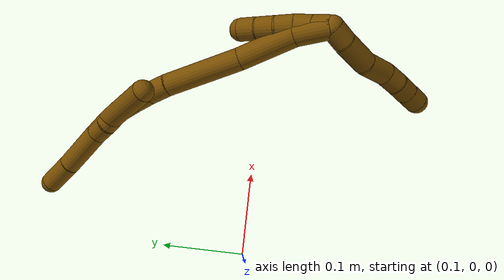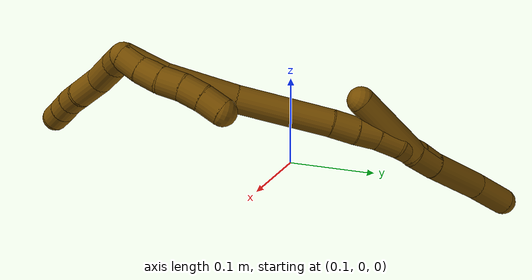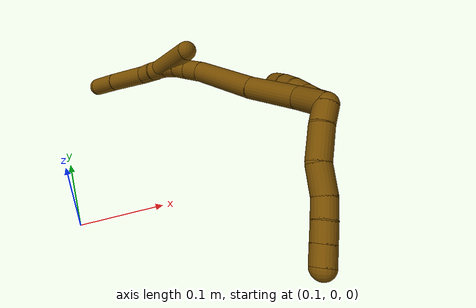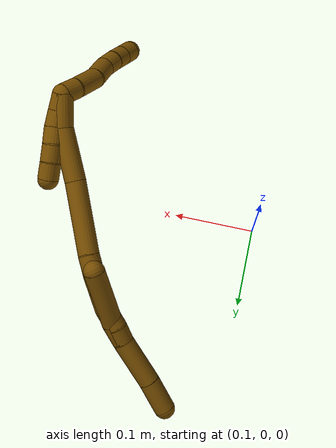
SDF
<sdf version="1.7">
 <world name="default">
  <model name="12">
   <static>0</static>
   <link name="12">
    <collision name="collision-cylinder-e_1_2_8">
     <pose>0.005767 -0.008968 9.7e-05 1.55998 0.571506 0.565684</pose>
     <geometry><cylinder><radius>0.0125</radius><length>0.021325</length></cylinder></geometry>
     <surface>
      <friction><ode><mu>1.16</mu><mu2>1.16</mu2><slip1>0</slip1><slip2>0</slip2></ode></friction>
      <contact><ode><kp>1e+06</kp><kd>1</kd><max_vel>0</max_vel><min_depth>0.001</min_depth></ode></contact>
     </surface>
    </collision>
    <visual name="visual-cylinder-e_1_2_8">
     <pose>0.005767 -0.008968 9.7e-05 1.55998 0.571506 0.565684</pose>
     <geometry><cylinder><radius>0.0125</radius><length>0.021325</length></cylinder></geometry>
     <material><ambient>0.466667 0.301961 0 1</ambient></material>
    </visual>
    <collision name="collision-cylinder-e_2_8_9">
     <pose>0.023657 -0.031764 0.001216 1.49703 0.718386 0.671135</pose>
     <geometry><cylinder><radius>0.0125</radius><length>0.036835</length></cylinder></geometry>
     <surface>
      <friction><ode><mu>1.16</mu><mu2>1.16</mu2><slip1>0</slip1><slip2>0</slip2></ode></friction>
      <contact><ode><kp>1e+06</kp><kd>1</kd><max_vel>0</max_vel><min_depth>0.001</min_depth></ode></contact>
     </surface>
    </collision>
    <visual name="visual-cylinder-e_2_8_9">
     <pose>0.023657 -0.031764 0.001216 1.49703 0.718386 0.671135</pose>
     <geometry><cylinder><radius>0.0125</radius><length>0.036835</length></cylinder></geometry>
     <material><ambient>0.466667 0.301961 0 1</ambient></material>
    </visual>
    <collision name="collision-cylinder-e_3_9_10">
     <pose>0.047618 -0.054922 0.00616 1.17282 0.863491 0.594086</pose>
     <geometry><cylinder><radius>0.0125</radius><length>0.031151</length></cylinder></geometry>
     <surface>
      <friction><ode><mu>1.16</mu><mu2>1.16</mu2><slip1>0</slip1><slip2>0</slip2></ode></friction>
      <contact><ode><kp>1e+06</kp><kd>1</kd><max_vel>0</max_vel><min_depth>0.001</min_depth></ode></contact>
     </surface>
    </collision>
    <visual name="visual-cylinder-e_3_9_10">
     <pose>0.047618 -0.054922 0.00616 1.17282 0.863491 0.594086</pose>
     <geometry><cylinder><radius>0.0125</radius><length>0.031151</length></cylinder></geometry>
     <material><ambient>0.466667 0.301961 0 1</ambient></material>
    </visual>
    <collision name="collision-cylinder-e_4_10_11">
     <pose>0.066131 -0.072013 0.011551 1.38378 0.701573 0.588726</pose>
     <geometry><cylinder><radius>0.0125</radius><length>0.020682</length></cylinder></geometry>
     <surface>
      <friction><ode><mu>1.16</mu><mu2>1.16</mu2><slip1>0</slip1><slip2>0</slip2></ode></friction>
      <contact><ode><kp>1e+06</kp><kd>1</kd><max_vel>0</max_vel><min_depth>0.001</min_depth></ode></contact>
     </surface>
    </collision>
    <visual name="visual-cylinder-e_4_10_11">
     <pose>0.066131 -0.072013 0.011551 1.38378 0.701573 0.588726</pose>
     <geometry><cylinder><radius>0.0125</radius><length>0.020682</length></cylinder></geometry>
     <material><ambient>0.466667 0.301961 0 1</ambient></material>
    </visual>
    <collision name="collision-cylinder-e_5_11_12">
     <pose>0.079919 -0.086761 0.013788 1.46124 0.79131 0.716239</pose>
     <geometry><cylinder><radius>0.0125</radius><length>0.020002</length></cylinder></geometry>
     <surface>
      <friction><ode><mu>1.16</mu><mu2>1.16</mu2><slip1>0</slip1><slip2>0</slip2></ode></friction>
      <contact><ode><kp>1e+06</kp><kd>1</kd><max_vel>0</max_vel><min_depth>0.001</min_depth></ode></contact>
     </surface>
    </collision>
    <visual name="visual-cylinder-e_5_11_12">
     <pose>0.079919 -0.086761 0.013788 1.46124 0.79131 0.716239</pose>
     <geometry><cylinder><radius>0.0125</radius><length>0.020002</length></cylinder></geometry>
     <material><ambient>0.466667 0.301961 0 1</ambient></material>
    </visual>
    <collision name="collision-cylinder-e_6_12_6">
     <pose>0.094032 -0.100846 0.015393 1.45349 0.775042 0.696213</pose>
     <geometry><cylinder><radius>0.0125</radius><length>0.020004</length></cylinder></geometry>
     <surface>
      <friction><ode><mu>1.16</mu><mu2>1.16</mu2><slip1>0</slip1><slip2>0</slip2></ode></friction>
      <contact><ode><kp>1e+06</kp><kd>1</kd><max_vel>0</max_vel><min_depth>0.001</min_depth></ode></contact>
     </surface>
    </collision>
    <visual name="visual-cylinder-e_6_12_6">
     <pose>0.094032 -0.100846 0.015393 1.45349 0.775042 0.696213</pose>
     <geometry><cylinder><radius>0.0125</radius><length>0.020004</length></cylinder></geometry>
     <material><ambient>0.466667 0.301961 0 1</ambient></material>
    </visual>
    <collision name="collision-cylinder-e_1_2_13">
     <pose>0.001466 0.006149 -0.007749 -2.47085 0.147107 -0.416695</pose>
     <geometry><cylinder><radius>0.0125</radius><length>0.02</length></cylinder></geometry>
     <surface>
      <friction><ode><mu>1.16</mu><mu2>1.16</mu2><slip1>0</slip1><slip2>0</slip2></ode></friction>
      <contact><ode><kp>1e+06</kp><kd>1</kd><max_vel>0</max_vel><min_depth>0.001</min_depth></ode></contact>
     </surface>
    </collision>
    <visual name="visual-cylinder-e_1_2_13">
     <pose>0.001466 0.006149 -0.007749 -2.47085 0.147107 -0.416695</pose>
     <geometry><cylinder><radius>0.0125</radius><length>0.02</length></cylinder></geometry>
     <material><ambient>0.466667 0.301961 0 1</ambient></material>
    </visual>
    <collision name="collision-cylinder-e_2_13_14">
     <pose>0.002936 0.018525 -0.023322 -2.46926 0.000486 -0.00139</pose>
     <geometry><cylinder><radius>0.0125</radius><length>0.02</length></cylinder></geometry>
     <surface>
      <friction><ode><mu>1.16</mu><mu2>1.16</mu2><slip1>0</slip1><slip2>0</slip2></ode></friction>
      <contact><ode><kp>1e+06</kp><kd>1</kd><max_vel>0</max_vel><min_depth>0.001</min_depth></ode></contact>
     </surface>
    </collision>
    <visual name="visual-cylinder-e_2_13_14">
     <pose>0.002936 0.018525 -0.023322 -2.46926 0.000486 -0.00139</pose>
     <geometry><cylinder><radius>0.0125</radius><length>0.02</length></cylinder></geometry>
     <material><ambient>0.466667 0.301961 0 1</ambient></material>
    </visual>
    <collision name="collision-cylinder-e_3_14_15">
     <pose>0.001586 0.029974 -0.039566 -2.58657 -0.135902 0.469023</pose>
     <geometry><cylinder><radius>0.0125</radius><length>0.02</length></cylinder></geometry>
     <surface>
      <friction><ode><mu>1.16</mu><mu2>1.16</mu2><slip1>0</slip1><slip2>0</slip2></ode></friction>
      <contact><ode><kp>1e+06</kp><kd>1</kd><max_vel>0</max_vel><min_depth>0.001</min_depth></ode></contact>
     </surface>
    </collision>
    <visual name="visual-cylinder-e_3_14_15">
     <pose>0.001586 0.029974 -0.039566 -2.58657 -0.135902 0.469023</pose>
     <geometry><cylinder><radius>0.0125</radius><length>0.02</length></cylinder></geometry>
     <material><ambient>0.466667 0.301961 0 1</ambient></material>
    </visual>
    <collision name="collision-cylinder-e_4_15_16">
     <pose>0.000449 0.040632 -0.056377 -2.5667 0.021788 -0.073669</pose>
     <geometry><cylinder><radius>0.0125</radius><length>0.02</length></cylinder></geometry>
     <surface>
      <friction><ode><mu>1.16</mu><mu2>1.16</mu2><slip1>0</slip1><slip2>0</slip2></ode></friction>
      <contact><ode><kp>1e+06</kp><kd>1</kd><max_vel>0</max_vel><min_depth>0.001</min_depth></ode></contact>
     </surface>
    </collision>
    <visual name="visual-cylinder-e_4_15_16">
     <pose>0.000449 0.040632 -0.056377 -2.5667 0.021788 -0.073669</pose>
     <geometry><cylinder><radius>0.0125</radius><length>0.02</length></cylinder></geometry>
     <material><ambient>0.466667 0.301961 0 1</ambient></material>
    </visual>
    <collision name="collision-cylinder-e_5_16_5">
     <pose>0.0021 0.051508 -0.073035 -2.55955 0.143794 -0.471942</pose>
     <geometry><cylinder><radius>0.0125</radius><length>0.02</length></cylinder></geometry>
     <surface>
      <friction><ode><mu>1.16</mu><mu2>1.16</mu2><slip1>0</slip1><slip2>0</slip2></ode></friction>
      <contact><ode><kp>1e+06</kp><kd>1</kd><max_vel>0</max_vel><min_depth>0.001</min_depth></ode></contact>
     </surface>
    </collision>
    <visual name="visual-cylinder-e_5_16_5">
     <pose>0.0021 0.051508 -0.073035 -2.55955 0.143794 -0.471942</pose>
     <geometry><cylinder><radius>0.0125</radius><length>0.02</length></cylinder></geometry>
     <material><ambient>0.466667 0.301961 0 1</ambient></material>
    </visual>
    <collision name="collision-cylinder-e_1_2_17">
     <pose>0.000491 0.008259 -0.017767 -2.70647 0.025071 -0.113299</pose>
     <geometry><cylinder><radius>0.0125</radius><length>0.039198</length></cylinder></geometry>
     <surface>
      <friction><ode><mu>1.16</mu><mu2>1.16</mu2><slip1>0</slip1><slip2>0</slip2></ode></friction>
      <contact><ode><kp>1e+06</kp><kd>1</kd><max_vel>0</max_vel><min_depth>0.001</min_depth></ode></contact>
     </surface>
    </collision>
    <visual name="visual-cylinder-e_1_2_17">
     <pose>0.000491 0.008259 -0.017767 -2.70647 0.025071 -0.113299</pose>
     <geometry><cylinder><radius>0.0125</radius><length>0.039198</length></cylinder></geometry>
     <material><ambient>0.466667 0.301961 0 1</ambient></material>
    </visual>
    <collision name="collision-cylinder-e_2_17_18">
     <pose>-0.002413 0.023231 -0.06625 -2.92642 -0.107577 0.924905</pose>
     <geometry><cylinder><radius>0.0125</radius><length>0.063247</length></cylinder></geometry>
     <surface>
      <friction><ode><mu>1.16</mu><mu2>1.16</mu2><slip1>0</slip1><slip2>0</slip2></ode></friction>
      <contact><ode><kp>1e+06</kp><kd>1</kd><max_vel>0</max_vel><min_depth>0.001</min_depth></ode></contact>
     </surface>
    </collision>
    <visual name="visual-cylinder-e_2_17_18">
     <pose>-0.002413 0.023231 -0.06625 -2.92642 -0.107577 0.924905</pose>
     <geometry><cylinder><radius>0.0125</radius><length>0.063247</length></cylinder></geometry>
     <material><ambient>0.466667 0.301961 0 1</ambient></material>
    </visual>
    <collision name="collision-cylinder-e_3_18_19">
     <pose>-0.013011 0.041315 -0.137753 -2.86971 -0.168504 1.10625</pose>
     <geometry><cylinder><radius>0.0125</radius><length>0.0859</length></cylinder></geometry>
     <surface>
      <friction><ode><mu>1.16</mu><mu2>1.16</mu2><slip1>0</slip1><slip2>0</slip2></ode></friction>
      <contact><ode><kp>1e+06</kp><kd>1</kd><max_vel>0</max_vel><min_depth>0.001</min_depth></ode></contact>
     </surface>
    </collision>
    <visual name="visual-cylinder-e_3_18_19">
     <pose>-0.013011 0.041315 -0.137753 -2.86971 -0.168504 1.10625</pose>
     <geometry><cylinder><radius>0.0125</radius><length>0.0859</length></cylinder></geometry>
     <material><ambient>0.466667 0.301961 0 1</ambient></material>
    </visual>
    <collision name="collision-cylinder-e_4_19_20">
     <pose>-0.021394 0.05493 -0.190101 -2.94982 -0.099788 0.957724</pose>
     <geometry><cylinder><radius>0.0125</radius><length>0.023672</length></cylinder></geometry>
     <surface>
      <friction><ode><mu>1.16</mu><mu2>1.16</mu2><slip1>0</slip1><slip2>0</slip2></ode></friction>
      <contact><ode><kp>1e+06</kp><kd>1</kd><max_vel>0</max_vel><min_depth>0.001</min_depth></ode></contact>
     </surface>
    </collision>
    <visual name="visual-cylinder-e_4_19_20">
     <pose>-0.021394 0.05493 -0.190101 -2.94982 -0.099788 0.957724</pose>
     <geometry><cylinder><radius>0.0125</radius><length>0.023672</length></cylinder></geometry>
     <material><ambient>0.466667 0.301961 0 1</ambient></material>
    </visual>
    <collision name="collision-cylinder-e_5_20_21">
     <pose>-0.024078 0.058378 -0.211539 -3.02041 -0.15015 1.78419</pose>
     <geometry><cylinder><radius>0.0125</radius><length>0.020127</length></cylinder></geometry>
     <surface>
      <friction><ode><mu>1.16</mu><mu2>1.16</mu2><slip1>0</slip1><slip2>0</slip2></ode></friction>
      <contact><ode><kp>1e+06</kp><kd>1</kd><max_vel>0</max_vel><min_depth>0.001</min_depth></ode></contact>
     </surface>
    </collision>
    <visual name="visual-cylinder-e_5_20_21">
     <pose>-0.024078 0.058378 -0.211539 -3.02041 -0.15015 1.78419</pose>
     <geometry><cylinder><radius>0.0125</radius><length>0.020127</length></cylinder></geometry>
     <material><ambient>0.466667 0.301961 0 1</ambient></material>
    </visual>
    <collision name="collision-cylinder-e_6_21_22">
     <pose>-0.02572 0.060827 -0.232581 -3.03039 -0.012166 0.217716</pose>
     <geometry><cylinder><radius>0.0125</radius><length>0.022471</length></cylinder></geometry>
     <surface>
      <friction><ode><mu>1.16</mu><mu2>1.16</mu2><slip1>0</slip1><slip2>0</slip2></ode></friction>
      <contact><ode><kp>1e+06</kp><kd>1</kd><max_vel>0</max_vel><min_depth>0.001</min_depth></ode></contact>
     </surface>
    </collision>
    <visual name="visual-cylinder-e_6_21_22">
     <pose>-0.02572 0.060827 -0.232581 -3.03039 -0.012166 0.217716</pose>
     <geometry><cylinder><radius>0.0125</radius><length>0.022471</length></cylinder></geometry>
     <material><ambient>0.466667 0.301961 0 1</ambient></material>
    </visual>
    <collision name="collision-cylinder-e_7_22_23">
     <pose>-0.02481 0.060853 -0.25607 3.04285 0.084359 1.41379</pose>
     <geometry><cylinder><radius>0.0125</radius><length>0.024856</length></cylinder></geometry>
     <surface>
      <friction><ode><mu>1.16</mu><mu2>1.16</mu2><slip1>0</slip1><slip2>0</slip2></ode></friction>
      <contact><ode><kp>1e+06</kp><kd>1</kd><max_vel>0</max_vel><min_depth>0.001</min_depth></ode></contact>
     </surface>
    </collision>
    <visual name="visual-cylinder-e_7_22_23">
     <pose>-0.02481 0.060853 -0.25607 3.04285 0.084359 1.41379</pose>
     <geometry><cylinder><radius>0.0125</radius><length>0.024856</length></cylinder></geometry>
     <material><ambient>0.466667 0.301961 0 1</ambient></material>
    </visual>
    <collision name="collision-cylinder-e_8_23_1">
     <pose>-0.021617 0.059678 -0.278431 -3.137 0.210556 -3.09813</pose>
     <geometry><cylinder><radius>0.0125</radius><length>0.020528</length></cylinder></geometry>
     <surface>
      <friction><ode><mu>1.16</mu><mu2>1.16</mu2><slip1>0</slip1><slip2>0</slip2></ode></friction>
      <contact><ode><kp>1e+06</kp><kd>1</kd><max_vel>0</max_vel><min_depth>0.001</min_depth></ode></contact>
     </surface>
    </collision>
    <visual name="visual-cylinder-e_8_23_1">
     <pose>-0.021617 0.059678 -0.278431 -3.137 0.210556 -3.09813</pose>
     <geometry><cylinder><radius>0.0125</radius><length>0.020528</length></cylinder></geometry>
     <material><ambient>0.466667 0.301961 0 1</ambient></material>
    </visual>
    <collision name="collision-cylinder-e_1_1_24">
     <pose>-0.01705 0.055931 -0.317517 3.01175 0.08249 1.1312</pose>
     <geometry><cylinder><radius>0.0125</radius><length>0.058791</length></cylinder></geometry>
     <surface>
      <friction><ode><mu>1.16</mu><mu2>1.16</mu2><slip1>0</slip1><slip2>0</slip2></ode></friction>
      <contact><ode><kp>1e+06</kp><kd>1</kd><max_vel>0</max_vel><min_depth>0.001</min_depth></ode></contact>
     </surface>
    </collision>
    <visual name="visual-cylinder-e_1_1_24">
     <pose>-0.01705 0.055931 -0.317517 3.01175 0.08249 1.1312</pose>
     <geometry><cylinder><radius>0.0125</radius><length>0.058791</length></cylinder></geometry>
     <material><ambient>0.466667 0.301961 0 1</ambient></material>
    </visual>
    <collision name="collision-cylinder-e_2_24_4">
     <pose>-0.012069 0.050732 -0.366963 3.07274 0.124498 2.13202</pose>
     <geometry><cylinder><radius>0.0125</radius><length>0.041209</length></cylinder></geometry>
     <surface>
      <friction><ode><mu>1.16</mu><mu2>1.16</mu2><slip1>0</slip1><slip2>0</slip2></ode></friction>
      <contact><ode><kp>1e+06</kp><kd>1</kd><max_vel>0</max_vel><min_depth>0.001</min_depth></ode></contact>
     </surface>
    </collision>
    <visual name="visual-cylinder-e_2_24_4">
     <pose>-0.012069 0.050732 -0.366963 3.07274 0.124498 2.13202</pose>
     <geometry><cylinder><radius>0.0125</radius><length>0.041209</length></cylinder></geometry>
     <material><ambient>0.466667 0.301961 0 1</ambient></material>
    </visual>
    <collision name="collision-cylinder-e_1_1_25">
     <pose>-0.021257 0.060802 -0.275503 -0.082939 -0.136364 0.005667</pose>
     <geometry><cylinder><radius>0.0125</radius><length>0.026263</length></cylinder></geometry>
     <surface>
      <friction><ode><mu>1.16</mu><mu2>1.16</mu2><slip1>0</slip1><slip2>0</slip2></ode></friction>
      <contact><ode><kp>1e+06</kp><kd>1</kd><max_vel>0</max_vel><min_depth>0.001</min_depth></ode></contact>
     </surface>
    </collision>
    <visual name="visual-cylinder-e_1_1_25">
     <pose>-0.021257 0.060802 -0.275503 -0.082939 -0.136364 0.005667</pose>
     <geometry><cylinder><radius>0.0125</radius><length>0.026263</length></cylinder></geometry>
     <material><ambient>0.466667 0.301961 0 1</ambient></material>
    </visual>
    <collision name="collision-cylinder-e_2_25_3">
     <pose>-0.035996 0.058964 -0.228144 0.084573 -0.359018 -0.015356</pose>
     <geometry><cylinder><radius>0.0125</radius><length>0.073737</length></cylinder></geometry>
     <surface>
      <friction><ode><mu>1.16</mu><mu2>1.16</mu2><slip1>0</slip1><slip2>0</slip2></ode></friction>
      <contact><ode><kp>1e+06</kp><kd>1</kd><max_vel>0</max_vel><min_depth>0.001</min_depth></ode></contact>
     </surface>
    </collision>
    <visual name="visual-cylinder-e_2_25_3">
     <pose>-0.035996 0.058964 -0.228144 0.084573 -0.359018 -0.015356</pose>
     <geometry><cylinder><radius>0.0125</radius><length>0.073737</length></cylinder></geometry>
     <material><ambient>0.466667 0.301961 0 1</ambient></material>
    </visual>
    <collision name="collision-sphere-3">
     <pose>-0.04895 0.056048 -0.193749 0 -0 0</pose>
     <geometry><sphere><radius>0.0125</radius></sphere></geometry>
     <surface>
      <friction><ode><mu>1.16</mu><mu2>1.16</mu2><slip1>0</slip1><slip2>0</slip2></ode></friction>
      <contact><ode><kp>1e+06</kp><kd>1</kd><max_vel>0</max_vel><min_depth>0.001</min_depth></ode></contact>
     </surface>
    </collision>
    <visual name="visual-sphere-3">
     <pose>-0.04895 0.056048 -0.193749 0 -0 0</pose>
     <geometry><sphere><radius>0.0125</radius></sphere></geometry>
     <material><ambient>0.466667 0.301961 0 1</ambient></material>
    </visual>
    <collision name="collision-sphere-25">
     <pose>-0.023042 0.06188 -0.262538 0 -0 0</pose>
     <geometry><sphere><radius>0.0125</radius></sphere></geometry>
     <surface>
      <friction><ode><mu>1.16</mu><mu2>1.16</mu2><slip1>0</slip1><slip2>0</slip2></ode></friction>
      <contact><ode><kp>1e+06</kp><kd>1</kd><max_vel>0</max_vel><min_depth>0.001</min_depth></ode></contact>
     </surface>
    </collision>
    <visual name="visual-sphere-25">
     <pose>-0.023042 0.06188 -0.262538 0 -0 0</pose>
     <geometry><sphere><radius>0.0125</radius></sphere></geometry>
     <material><ambient>0.466667 0.301961 0 1</ambient></material>
    </visual>
    <collision name="collision-sphere-4">
     <pose>-0.00951 0.049325 -0.387359 0 -0 0</pose>
     <geometry><sphere><radius>0.0125</radius></sphere></geometry>
     <surface>
      <friction><ode><mu>1.16</mu><mu2>1.16</mu2><slip1>0</slip1><slip2>0</slip2></ode></friction>
      <contact><ode><kp>1e+06</kp><kd>1</kd><max_vel>0</max_vel><min_depth>0.001</min_depth></ode></contact>
     </surface>
    </collision>
    <visual name="visual-sphere-4">
     <pose>-0.00951 0.049325 -0.387359 0 -0 0</pose>
     <geometry><sphere><radius>0.0125</radius></sphere></geometry>
     <material><ambient>0.466667 0.301961 0 1</ambient></material>
    </visual>
    <collision name="collision-sphere-24">
     <pose>-0.014628 0.052138 -0.346566 0 -0 0</pose>
     <geometry><sphere><radius>0.0125</radius></sphere></geometry>
     <surface>
      <friction><ode><mu>1.16</mu><mu2>1.16</mu2><slip1>0</slip1><slip2>0</slip2></ode></friction>
      <contact><ode><kp>1e+06</kp><kd>1</kd><max_vel>0</max_vel><min_depth>0.001</min_depth></ode></contact>
     </surface>
    </collision>
    <visual name="visual-sphere-24">
     <pose>-0.014628 0.052138 -0.346566 0 -0 0</pose>
     <geometry><sphere><radius>0.0125</radius></sphere></geometry>
     <material><ambient>0.466667 0.301961 0 1</ambient></material>
    </visual>
    <collision name="collision-sphere-1">
     <pose>-0.019472 0.059725 -0.288468 0 -0 0</pose>
     <geometry><sphere><radius>0.0125</radius></sphere></geometry>
     <surface>
      <friction><ode><mu>1.16</mu><mu2>1.16</mu2><slip1>0</slip1><slip2>0</slip2></ode></friction>
      <contact><ode><kp>1e+06</kp><kd>1</kd><max_vel>0</max_vel><min_depth>0.001</min_depth></ode></contact>
     </surface>
    </collision>
    <visual name="visual-sphere-1">
     <pose>-0.019472 0.059725 -0.288468 0 -0 0</pose>
     <geometry><sphere><radius>0.0125</radius></sphere></geometry>
     <material><ambient>0.466667 0.301961 0 1</ambient></material>
    </visual>
    <collision name="collision-sphere-23">
     <pose>-0.023762 0.059632 -0.268394 0 -0 0</pose>
     <geometry><sphere><radius>0.0125</radius></sphere></geometry>
     <surface>
      <friction><ode><mu>1.16</mu><mu2>1.16</mu2><slip1>0</slip1><slip2>0</slip2></ode></friction>
      <contact><ode><kp>1e+06</kp><kd>1</kd><max_vel>0</max_vel><min_depth>0.001</min_depth></ode></contact>
     </surface>
    </collision>
    <visual name="visual-sphere-23">
     <pose>-0.023762 0.059632 -0.268394 0 -0 0</pose>
     <geometry><sphere><radius>0.0125</radius></sphere></geometry>
     <material><ambient>0.466667 0.301961 0 1</ambient></material>
    </visual>
    <collision name="collision-sphere-22">
     <pose>-0.025857 0.062074 -0.243747 0 -0 0</pose>
     <geometry><sphere><radius>0.0125</radius></sphere></geometry>
     <surface>
      <friction><ode><mu>1.16</mu><mu2>1.16</mu2><slip1>0</slip1><slip2>0</slip2></ode></friction>
      <contact><ode><kp>1e+06</kp><kd>1</kd><max_vel>0</max_vel><min_depth>0.001</min_depth></ode></contact>
     </surface>
    </collision>
    <visual name="visual-sphere-22">
     <pose>-0.025857 0.062074 -0.243747 0 -0 0</pose>
     <geometry><sphere><radius>0.0125</radius></sphere></geometry>
     <material><ambient>0.466667 0.301961 0 1</ambient></material>
    </visual>
    <collision name="collision-sphere-21">
     <pose>-0.025583 0.059581 -0.221416 0 -0 0</pose>
     <geometry><sphere><radius>0.0125</radius></sphere></geometry>
     <surface>
      <friction><ode><mu>1.16</mu><mu2>1.16</mu2><slip1>0</slip1><slip2>0</slip2></ode></friction>
      <contact><ode><kp>1e+06</kp><kd>1</kd><max_vel>0</max_vel><min_depth>0.001</min_depth></ode></contact>
     </surface>
    </collision>
    <visual name="visual-sphere-21">
     <pose>-0.025583 0.059581 -0.221416 0 -0 0</pose>
     <geometry><sphere><radius>0.0125</radius></sphere></geometry>
     <material><ambient>0.466667 0.301961 0 1</ambient></material>
    </visual>
    <collision name="collision-sphere-12">
     <pose>0.087033 -0.093749 0.014557 0 -0 0</pose>
     <geometry><sphere><radius>0.0125</radius></sphere></geometry>
     <surface>
      <friction><ode><mu>1.16</mu><mu2>1.16</mu2><slip1>0</slip1><slip2>0</slip2></ode></friction>
      <contact><ode><kp>1e+06</kp><kd>1</kd><max_vel>0</max_vel><min_depth>0.001</min_depth></ode></contact>
     </surface>
    </collision>
    <visual name="visual-sphere-12">
     <pose>0.087033 -0.093749 0.014557 0 -0 0</pose>
     <geometry><sphere><radius>0.0125</radius></sphere></geometry>
     <material><ambient>0.466667 0.301961 0 1</ambient></material>
    </visual>
    <collision name="collision-sphere-11">
     <pose>0.072806 -0.079774 0.01302 0 -0 0</pose>
     <geometry><sphere><radius>0.0125</radius></sphere></geometry>
     <surface>
      <friction><ode><mu>1.16</mu><mu2>1.16</mu2><slip1>0</slip1><slip2>0</slip2></ode></friction>
      <contact><ode><kp>1e+06</kp><kd>1</kd><max_vel>0</max_vel><min_depth>0.001</min_depth></ode></contact>
     </surface>
    </collision>
    <visual name="visual-sphere-11">
     <pose>0.072806 -0.079774 0.01302 0 -0 0</pose>
     <geometry><sphere><radius>0.0125</radius></sphere></geometry>
     <material><ambient>0.466667 0.301961 0 1</ambient></material>
    </visual>
    <collision name="collision-sphere-10">
     <pose>0.059457 -0.064251 0.010082 0 -0 0</pose>
     <geometry><sphere><radius>0.0125</radius></sphere></geometry>
     <surface>
      <friction><ode><mu>1.16</mu><mu2>1.16</mu2><slip1>0</slip1><slip2>0</slip2></ode></friction>
      <contact><ode><kp>1e+06</kp><kd>1</kd><max_vel>0</max_vel><min_depth>0.001</min_depth></ode></contact>
     </surface>
    </collision>
    <visual name="visual-sphere-10">
     <pose>0.059457 -0.064251 0.010082 0 -0 0</pose>
     <geometry><sphere><radius>0.0125</radius></sphere></geometry>
     <material><ambient>0.466667 0.301961 0 1</ambient></material>
    </visual>
    <collision name="collision-sphere-9">
     <pose>0.035779 -0.045592 0.002238 0 -0 0</pose>
     <geometry><sphere><radius>0.0125</radius></sphere></geometry>
     <surface>
      <friction><ode><mu>1.16</mu><mu2>1.16</mu2><slip1>0</slip1><slip2>0</slip2></ode></friction>
      <contact><ode><kp>1e+06</kp><kd>1</kd><max_vel>0</max_vel><min_depth>0.001</min_depth></ode></contact>
     </surface>
    </collision>
    <visual name="visual-sphere-9">
     <pose>0.035779 -0.045592 0.002238 0 -0 0</pose>
     <geometry><sphere><radius>0.0125</radius></sphere></geometry>
     <material><ambient>0.466667 0.301961 0 1</ambient></material>
    </visual>
    <collision name="collision-sphere-2">
     <geometry><sphere><radius>0.0125</radius></sphere></geometry>
     <surface>
      <friction><ode><mu>1.16</mu><mu2>1.16</mu2><slip1>0</slip1><slip2>0</slip2></ode></friction>
      <contact><ode><kp>1e+06</kp><kd>1</kd><max_vel>0</max_vel><min_depth>0.001</min_depth></ode></contact>
     </surface>
    </collision>
    <visual name="visual-sphere-2">
     <geometry><sphere><radius>0.0125</radius></sphere></geometry>
     <material><ambient>0.466667 0.301961 0 1</ambient></material>
    </visual>
    <collision name="collision-sphere-19">
     <pose>-0.020214 0.052685 -0.178539 0 -0 0</pose>
     <geometry><sphere><radius>0.0125</radius></sphere></geometry>
     <surface>
      <friction><ode><mu>1.16</mu><mu2>1.16</mu2><slip1>0</slip1><slip2>0</slip2></ode></friction>
      <contact><ode><kp>1e+06</kp><kd>1</kd><max_vel>0</max_vel><min_depth>0.001</min_depth></ode></contact>
     </surface>
    </collision>
    <visual name="visual-sphere-19">
     <pose>-0.020214 0.052685 -0.178539 0 -0 0</pose>
     <geometry><sphere><radius>0.0125</radius></sphere></geometry>
     <material><ambient>0.466667 0.301961 0 1</ambient></material>
    </visual>
    <collision name="collision-sphere-8">
     <pose>0.011535 -0.017935 0.000194 0 -0 0</pose>
     <geometry><sphere><radius>0.0125</radius></sphere></geometry>
     <surface>
      <friction><ode><mu>1.16</mu><mu2>1.16</mu2><slip1>0</slip1><slip2>0</slip2></ode></friction>
      <contact><ode><kp>1e+06</kp><kd>1</kd><max_vel>0</max_vel><min_depth>0.001</min_depth></ode></contact>
     </surface>
    </collision>
    <visual name="visual-sphere-8">
     <pose>0.011535 -0.017935 0.000194 0 -0 0</pose>
     <geometry><sphere><radius>0.0125</radius></sphere></geometry>
     <material><ambient>0.466667 0.301961 0 1</ambient></material>
    </visual>
    <collision name="collision-sphere-6">
     <pose>0.101031 -0.107942 0.016229 0 -0 0</pose>
     <geometry><sphere><radius>0.0125</radius></sphere></geometry>
     <surface>
      <friction><ode><mu>1.16</mu><mu2>1.16</mu2><slip1>0</slip1><slip2>0</slip2></ode></friction>
      <contact><ode><kp>1e+06</kp><kd>1</kd><max_vel>0</max_vel><min_depth>0.001</min_depth></ode></contact>
     </surface>
    </collision>
    <visual name="visual-sphere-6">
     <pose>0.101031 -0.107942 0.016229 0 -0 0</pose>
     <geometry><sphere><radius>0.0125</radius></sphere></geometry>
     <material><ambient>0.466667 0.301961 0 1</ambient></material>
    </visual>
    <collision name="collision-sphere-13">
     <pose>0.002932 0.012297 -0.015498 0 -0 0</pose>
     <geometry><sphere><radius>0.0125</radius></sphere></geometry>
     <surface>
      <friction><ode><mu>1.16</mu><mu2>1.16</mu2><slip1>0</slip1><slip2>0</slip2></ode></friction>
      <contact><ode><kp>1e+06</kp><kd>1</kd><max_vel>0</max_vel><min_depth>0.001</min_depth></ode></contact>
     </surface>
    </collision>
    <visual name="visual-sphere-13">
     <pose>0.002932 0.012297 -0.015498 0 -0 0</pose>
     <geometry><sphere><radius>0.0125</radius></sphere></geometry>
     <material><ambient>0.466667 0.301961 0 1</ambient></material>
    </visual>
    <collision name="collision-sphere-14">
     <pose>0.002941 0.024753 -0.031145 0 -0 0</pose>
     <geometry><sphere><radius>0.0125</radius></sphere></geometry>
     <surface>
      <friction><ode><mu>1.16</mu><mu2>1.16</mu2><slip1>0</slip1><slip2>0</slip2></ode></friction>
      <contact><ode><kp>1e+06</kp><kd>1</kd><max_vel>0</max_vel><min_depth>0.001</min_depth></ode></contact>
     </surface>
    </collision>
    <visual name="visual-sphere-14">
     <pose>0.002941 0.024753 -0.031145 0 -0 0</pose>
     <geometry><sphere><radius>0.0125</radius></sphere></geometry>
     <material><ambient>0.466667 0.301961 0 1</ambient></material>
    </visual>
    <collision name="collision-sphere-15">
     <pose>0.000232 0.035195 -0.047986 0 -0 0</pose>
     <geometry><sphere><radius>0.0125</radius></sphere></geometry>
     <surface>
      <friction><ode><mu>1.16</mu><mu2>1.16</mu2><slip1>0</slip1><slip2>0</slip2></ode></friction>
      <contact><ode><kp>1e+06</kp><kd>1</kd><max_vel>0</max_vel><min_depth>0.001</min_depth></ode></contact>
     </surface>
    </collision>
    <visual name="visual-sphere-15">
     <pose>0.000232 0.035195 -0.047986 0 -0 0</pose>
     <geometry><sphere><radius>0.0125</radius></sphere></geometry>
     <material><ambient>0.466667 0.301961 0 1</ambient></material>
    </visual>
    <collision name="collision-sphere-16">
     <pose>0.000667 0.046068 -0.064767 0 -0 0</pose>
     <geometry><sphere><radius>0.0125</radius></sphere></geometry>
     <surface>
      <friction><ode><mu>1.16</mu><mu2>1.16</mu2><slip1>0</slip1><slip2>0</slip2></ode></friction>
      <contact><ode><kp>1e+06</kp><kd>1</kd><max_vel>0</max_vel><min_depth>0.001</min_depth></ode></contact>
     </surface>
    </collision>
    <visual name="visual-sphere-16">
     <pose>0.000667 0.046068 -0.064767 0 -0 0</pose>
     <geometry><sphere><radius>0.0125</radius></sphere></geometry>
     <material><ambient>0.466667 0.301961 0 1</ambient></material>
    </visual>
    <collision name="collision-sphere-5">
     <pose>0.003533 0.056949 -0.081302 0 -0 0</pose>
     <geometry><sphere><radius>0.0125</radius></sphere></geometry>
     <surface>
      <friction><ode><mu>1.16</mu><mu2>1.16</mu2><slip1>0</slip1><slip2>0</slip2></ode></friction>
      <contact><ode><kp>1e+06</kp><kd>1</kd><max_vel>0</max_vel><min_depth>0.001</min_depth></ode></contact>
     </surface>
    </collision>
    <visual name="visual-sphere-5">
     <pose>0.003533 0.056949 -0.081302 0 -0 0</pose>
     <geometry><sphere><radius>0.0125</radius></sphere></geometry>
     <material><ambient>0.466667 0.301961 0 1</ambient></material>
    </visual>
    <collision name="collision-sphere-17">
     <pose>0.000983 0.016518 -0.035535 0 -0 0</pose>
     <geometry><sphere><radius>0.0125</radius></sphere></geometry>
     <surface>
      <friction><ode><mu>1.16</mu><mu2>1.16</mu2><slip1>0</slip1><slip2>0</slip2></ode></friction>
      <contact><ode><kp>1e+06</kp><kd>1</kd><max_vel>0</max_vel><min_depth>0.001</min_depth></ode></contact>
     </surface>
    </collision>
    <visual name="visual-sphere-17">
     <pose>0.000983 0.016518 -0.035535 0 -0 0</pose>
     <geometry><sphere><radius>0.0125</radius></sphere></geometry>
     <material><ambient>0.466667 0.301961 0 1</ambient></material>
    </visual>
    <collision name="collision-sphere-18">
     <pose>-0.005808 0.029944 -0.096966 0 -0 0</pose>
     <geometry><sphere><radius>0.0125</radius></sphere></geometry>
     <surface>
      <friction><ode><mu>1.16</mu><mu2>1.16</mu2><slip1>0</slip1><slip2>0</slip2></ode></friction>
      <contact><ode><kp>1e+06</kp><kd>1</kd><max_vel>0</max_vel><min_depth>0.001</min_depth></ode></contact>
     </surface>
    </collision>
    <visual name="visual-sphere-18">
     <pose>-0.005808 0.029944 -0.096966 0 -0 0</pose>
     <geometry><sphere><radius>0.0125</radius></sphere></geometry>
     <material><ambient>0.466667 0.301961 0 1</ambient></material>
    </visual>
    <collision name="collision-sphere-20">
     <pose>-0.022573 0.057175 -0.201662 0 -0 0</pose>
     <geometry><sphere><radius>0.0125</radius></sphere></geometry>
     <surface>
      <friction><ode><mu>1.16</mu><mu2>1.16</mu2><slip1>0</slip1><slip2>0</slip2></ode></friction>
      <contact><ode><kp>1e+06</kp><kd>1</kd><max_vel>0</max_vel><min_depth>0.001</min_depth></ode></contact>
     </surface>
    </collision>
    <visual name="visual-sphere-20">
     <pose>-0.022573 0.057175 -0.201662 0 -0 0</pose>
     <geometry><sphere><radius>0.0125</radius></sphere></geometry>
     <material><ambient>0.466667 0.301961 0 1</ambient></material>
    </visual>
    <inertial>
     <pose>-0.001462 0.023822 -0.138095 0 -0 0</pose>
     <mass>0.75</mass>
     <inertia>
      <ixx>0.000211</ixx>
      <ixy>0</ixy>
      <ixz>0</ixz>
      <iyy>9.7e-05</iyy>
      <iyz>0</iyz>
      <izz>-2.7e-05</izz>
     </inertia>
    </inertial>
   </link>
   <pose>0.349997 -0.058051 0.169443 -0.100029 1.12998 -0.988886</pose>
  </model>
 </world>
</sdf>
